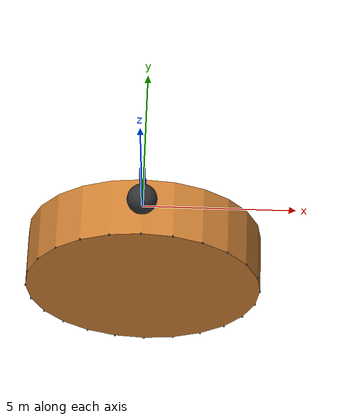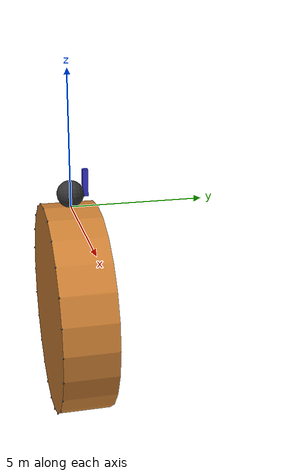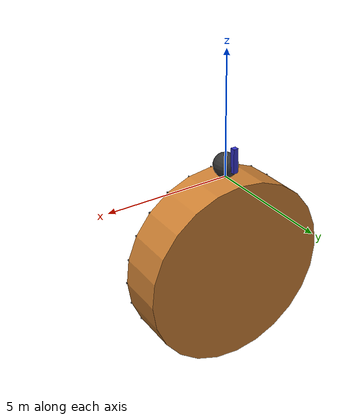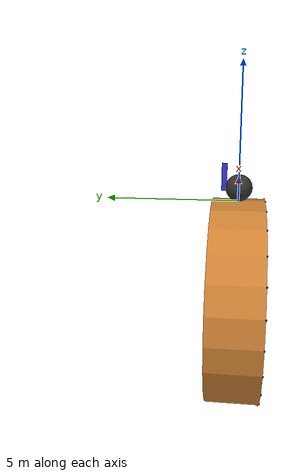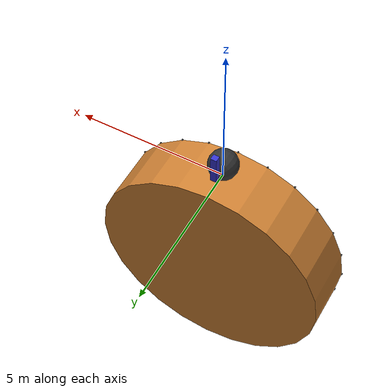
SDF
<?xml version="1.0" ?>
<sdf version="1.5">
  <world name="default">
    <plugin
      filename="gz-sim-apply-link-wrench-system"
      name="gz::sim::systems::ApplyLinkWrench">
    </plugin>

    <physics type="ode">
      <ode>
        <solver>
          <iters>100</iters>
          <sor>1.0</sor>
        </solver>
      </ode>
      <real_time_factor>0</real_time_factor>
    </physics>

    <model name="tire">
      <pose>0 0 0.5  0 0 0</pose>

      <link name="wheel">
        <pose>0 0 0  1.5707963267948966 0 0</pose>
        <inertial>
          <mass>2.5</mass>
          <inertia>
            <ixx>0.20833333333333331</ixx>
            <ixy>0</ixy>
            <ixz>0</ixz>
            <iyy>0.20833333333333331</iyy>
            <iyz>0</iyz>
            <izz>0.3125</izz>
          </inertia>
        </inertial>
        <collision name="collision">
          <geometry>
            <sphere>
              <radius>0.5</radius>
            </sphere>
          </geometry>
          <surface>
            <contact>
              <ode>
                <max_vel>1e5</max_vel>
                <min_depth>0.0</min_depth>
                <kp>250e3</kp>
                <kd>5</kd>
              </ode>
            </contact>
            <friction>
              <ode>
                <mu>1.0</mu>
                <mu2>1.0</mu2>
                <fdir1>0 0 1</fdir1>
              </ode>
            </friction>
          </surface>
        </collision>

        <visual name="visual_indicator">
          <pose>0 0 0.2 0 0 0</pose>
          <geometry>
            <box>
              <size>0.2 0.4 0.2</size>
            </box>
          </geometry>
          <material>
            <ambient>0.8 0.2 0.2 1</ambient>
            <diffuse>0.8 0.2 0.2 1</diffuse>
            <specular>0.8 0.2 0.2 1</specular>
          </material>
        </visual>

        <visual name="visual">
          <geometry>
            <sphere>
              <radius>0.5</radius>
            </sphere>
          </geometry>
          <material>
            <ambient>0.2 0.2 0.2 1</ambient>
            <diffuse>0.2 0.2 0.2 1</diffuse>
            <specular>0.2 0.2 0.2 1</specular>
          </material>
        </visual>
      </link>

      <link name="axle">
        <pose>0 0.35 0  0 0 0</pose>

        <inertial>
          <mass>0.5</mass>
          <inertia>
            <ixx>0.0029166</ixx>
            <ixy>0</ixy>
            <ixz>0</ixz>
            <iyy>0.0029166</iyy>
            <iyz>0</iyz>
            <izz>0.0025</izz>
          </inertia>
        </inertial>

        <collision name="collision">
          <geometry>
            <cylinder>
              <radius>0.1</radius>
              <length>0.2</length>
            </cylinder>
          </geometry>
        </collision>

        <visual name="visual">
          <geometry>
            <cylinder>
              <radius>0.1</radius>
              <length>0.2</length>
            </cylinder>
          </geometry>
          <material>
            <ambient>0.2 0.8 0.2 1</ambient>
            <diffuse>0.2 0.8 0.2 1</diffuse>
            <specular>0.2 0.8 0.2 1</specular>
          </material>
        </visual>
      </link>

      <link name="upright">
        <pose>0 0.55 0.4 0 0 0</pose>

        <inertial>
          <mass>1.0</mass>
          <inertia>
            <ixx>0.08667</ixx>
            <ixy>0</ixy>
            <ixz>0</ixz>
            <iyy>0.08667</iyy>
            <iyz>0</iyz>
            <izz>0.0066667</izz>
          </inertia>
        </inertial>

        <collision name="collision">
          <geometry>
            <box>
              <size>0.2 0.2 1</size>
            </box>
          </geometry>
        </collision>
        <visual name="visual">
          <geometry>
            <box>
              <size>0.2 0.2 1</size>
            </box>
          </geometry>
          <material>
            <ambient>0.2 0.2 0.8 1</ambient>
            <diffuse>0.2 0.2 0.8 1</diffuse>
            <specular>0.2 0.2 0.8 1</specular>
          </material>
        </visual>
      </link>

      <joint type="revolute" name="axle_wheel">
        <parent>axle</parent>
        <child>wheel</child>
        <axis>
          <xyz>0 0 1</xyz>
        </axis>

        <sensor name="force_torque" type="force_torque">
          <always_on>true</always_on>
          <visualize>true</visualize>
          <update_rate>1000</update_rate>
          <force_torque>
            <frame>parent</frame>
          </force_torque>
        </sensor>
      </joint>

      <joint type="revolute" name="steer">
        <parent>upright</parent>
        <child>axle</child>
        <axis>
          <xyz>0 0 1</xyz>
          <limit>
            <upper>0</upper>
            <lower>-0</lower>
          </limit>
        </axis>
      </joint>

      <joint type="prismatic" name="world_upright">
        <parent>world</parent>
        <child>upright</child>
        <axis>
          <xyz>0 0 1</xyz>
          <limit>
            <upper>0.1</upper>
            <lower>-0.1</lower>
          </limit>
        </axis>
      </joint>
      <plugin
        filename="gz-sim-wheel-slip-system"
        name="gz::sim::systems::WheelSlip">
        <wheel link_name="wheel">
          <wheel_radius>0.1</wheel_radius>
          <slip_compliance_lateral>0.01</slip_compliance_lateral>
          <slip_compliance_longitudinal>0.01</slip_compliance_longitudinal>
          <wheel_normal_force>1000</wheel_normal_force>
        </wheel>
      </plugin>
    </model>

    <model name="drum">
      <pose>0 0 -4.0  1.5707963267948966 0 0</pose>

      <link name="link">
        <inertial>
          <mass>10</mass>
          <inertia>
            <ixx>43.33333333333333</ixx>
            <ixy>0</ixy>
            <ixz>0</ixz>
            <iyy>43.33333333333333</iyy>
            <iyz>0</iyz>
            <izz>80.0</izz>
          </inertia>
        </inertial>
        <collision name="collision">
          <geometry>
            <cylinder>
              <radius>4.0</radius>
              <length>2.0</length>
            </cylinder>
          </geometry>
          <surface>
            <contact>
              <ode>
                <max_vel>1e5</max_vel>
                <min_depth>0.0</min_depth>
              </ode>
            </contact>
            <friction>
              <ode>
                <mu>1.5</mu>
                <mu2>1.5</mu2>
              </ode>
            </friction>
          </surface>
        </collision>

        <visual name="visual">
          <geometry>
            <cylinder>
              <radius>4.0</radius>
              <length>2.0</length>
            </cylinder>
          </geometry>
          <material>
            <ambient>0.8 0.5 0.2 1</ambient>
            <diffuse>0.8 0.5 0.2 1</diffuse>
            <specular>0.8 0.5 0.2 1</specular>
          </material>
        </visual>

        <visual name='block0'>
          <pose>0.0 4.0 1 0 0 0</pose>
          <geometry>
            <box>
              <size>0.05 0.05 0.05</size>
            </box>
          </geometry>
          <material>
            <ambient>0.0 0.0 0.0 1</ambient>
            <diffuse>0.0 0.0 0.0 1</diffuse>
            <specular>0.0 0.0 0.0 1</specular>
          </material>
        </visual>

        <visual name='block1'>
          <pose>1.035276180410083 3.8637033051562732 1 0 0 0</pose>
          <geometry>
            <box>
              <size>0.05 0.05 0.05</size>
            </box>
          </geometry>
          <material>
            <ambient>0.0 0.0 0.0 1</ambient>
            <diffuse>0.0 0.0 0.0 1</diffuse>
            <specular>0.0 0.0 0.0 1</specular>
          </material>
        </visual>

        <visual name='block2'>
          <pose>1.9999999999999998 3.464101615137755 1 0 0 0</pose>
          <geometry>
            <box>
              <size>0.05 0.05 0.05</size>
            </box>
          </geometry>
          <material>
            <ambient>0.0 0.0 0.0 1</ambient>
            <diffuse>0.0 0.0 0.0 1</diffuse>
            <specular>0.0 0.0 0.0 1</specular>
          </material>
        </visual>

        <visual name='block3'>
          <pose>2.82842712474619 2.8284271247461903 1 0 0 0</pose>
          <geometry>
            <box>
              <size>0.05 0.05 0.05</size>
            </box>
          </geometry>
          <material>
            <ambient>0.0 0.0 0.0 1</ambient>
            <diffuse>0.0 0.0 0.0 1</diffuse>
            <specular>0.0 0.0 0.0 1</specular>
          </material>
        </visual>

        <visual name='block4'>
          <pose>3.4641016151377544 2.0000000000000004 1 0 0 0</pose>
          <geometry>
            <box>
              <size>0.05 0.05 0.05</size>
            </box>
          </geometry>
          <material>
            <ambient>0.0 0.0 0.0 1</ambient>
            <diffuse>0.0 0.0 0.0 1</diffuse>
            <specular>0.0 0.0 0.0 1</specular>
          </material>
        </visual>

        <visual name='block5'>
          <pose>3.8637033051562732 1.035276180410083 1 0 0 0</pose>
          <geometry>
            <box>
              <size>0.05 0.05 0.05</size>
            </box>
          </geometry>
          <material>
            <ambient>0.0 0.0 0.0 1</ambient>
            <diffuse>0.0 0.0 0.0 1</diffuse>
            <specular>0.0 0.0 0.0 1</specular>
          </material>
        </visual>

        <visual name='block6'>
          <pose>4.0 2.4492935982947064e-16 1 0 0 0</pose>
          <geometry>
            <box>
              <size>0.05 0.05 0.05</size>
            </box>
          </geometry>
          <material>
            <ambient>0.0 0.0 0.0 1</ambient>
            <diffuse>0.0 0.0 0.0 1</diffuse>
            <specular>0.0 0.0 0.0 1</specular>
          </material>
        </visual>

        <visual name='block7'>
          <pose>3.8637033051562732 -1.0352761804100825 1 0 0 0</pose>
          <geometry>
            <box>
              <size>0.05 0.05 0.05</size>
            </box>
          </geometry>
          <material>
            <ambient>0.0 0.0 0.0 1</ambient>
            <diffuse>0.0 0.0 0.0 1</diffuse>
            <specular>0.0 0.0 0.0 1</specular>
          </material>
        </visual>

        <visual name='block8'>
          <pose>3.4641016151377553 -1.9999999999999991 1 0 0 0</pose>
          <geometry>
            <box>
              <size>0.05 0.05 0.05</size>
            </box>
          </geometry>
          <material>
            <ambient>0.0 0.0 0.0 1</ambient>
            <diffuse>0.0 0.0 0.0 1</diffuse>
            <specular>0.0 0.0 0.0 1</specular>
          </material>
        </visual>

        <visual name='block9'>
          <pose>2.8284271247461903 -2.82842712474619 1 0 0 0</pose>
          <geometry>
            <box>
              <size>0.05 0.05 0.05</size>
            </box>
          </geometry>
          <material>
            <ambient>0.0 0.0 0.0 1</ambient>
            <diffuse>0.0 0.0 0.0 1</diffuse>
            <specular>0.0 0.0 0.0 1</specular>
          </material>
        </visual>

        <visual name='block10'>
          <pose>1.9999999999999998 -3.464101615137755 1 0 0 0</pose>
          <geometry>
            <box>
              <size>0.05 0.05 0.05</size>
            </box>
          </geometry>
          <material>
            <ambient>0.0 0.0 0.0 1</ambient>
            <diffuse>0.0 0.0 0.0 1</diffuse>
            <specular>0.0 0.0 0.0 1</specular>
          </material>
        </visual>

        <visual name='block11'>
          <pose>1.035276180410084 -3.863703305156273 1 0 0 0</pose>
          <geometry>
            <box>
              <size>0.05 0.05 0.05</size>
            </box>
          </geometry>
          <material>
            <ambient>0.0 0.0 0.0 1</ambient>
            <diffuse>0.0 0.0 0.0 1</diffuse>
            <specular>0.0 0.0 0.0 1</specular>
          </material>
        </visual>

        <visual name='block12'>
          <pose>4.898587196589413e-16 -4.0 1 0 0 0</pose>
          <geometry>
            <box>
              <size>0.05 0.05 0.05</size>
            </box>
          </geometry>
          <material>
            <ambient>0.0 0.0 0.0 1</ambient>
            <diffuse>0.0 0.0 0.0 1</diffuse>
            <specular>0.0 0.0 0.0 1</specular>
          </material>
        </visual>

        <visual name='block13'>
          <pose>-1.0352761804100832 -3.8637033051562732 1 0 0 0</pose>
          <geometry>
            <box>
              <size>0.05 0.05 0.05</size>
            </box>
          </geometry>
          <material>
            <ambient>0.0 0.0 0.0 1</ambient>
            <diffuse>0.0 0.0 0.0 1</diffuse>
            <specular>0.0 0.0 0.0 1</specular>
          </material>
        </visual>

        <visual name='block14'>
          <pose>-1.9999999999999991 -3.4641016151377553 1 0 0 0</pose>
          <geometry>
            <box>
              <size>0.05 0.05 0.05</size>
            </box>
          </geometry>
          <material>
            <ambient>0.0 0.0 0.0 1</ambient>
            <diffuse>0.0 0.0 0.0 1</diffuse>
            <specular>0.0 0.0 0.0 1</specular>
          </material>
        </visual>

        <visual name='block15'>
          <pose>-2.8284271247461885 -2.8284271247461916 1 0 0 0</pose>
          <geometry>
            <box>
              <size>0.05 0.05 0.05</size>
            </box>
          </geometry>
          <material>
            <ambient>0.0 0.0 0.0 1</ambient>
            <diffuse>0.0 0.0 0.0 1</diffuse>
            <specular>0.0 0.0 0.0 1</specular>
          </material>
        </visual>

        <visual name='block16'>
          <pose>-3.4641016151377535 -2.0000000000000018 1 0 0 0</pose>
          <geometry>
            <box>
              <size>0.05 0.05 0.05</size>
            </box>
          </geometry>
          <material>
            <ambient>0.0 0.0 0.0 1</ambient>
            <diffuse>0.0 0.0 0.0 1</diffuse>
            <specular>0.0 0.0 0.0 1</specular>
          </material>
        </visual>

        <visual name='block17'>
          <pose>-3.8637033051562732 -1.0352761804100825 1 0 0 0</pose>
          <geometry>
            <box>
              <size>0.05 0.05 0.05</size>
            </box>
          </geometry>
          <material>
            <ambient>0.0 0.0 0.0 1</ambient>
            <diffuse>0.0 0.0 0.0 1</diffuse>
            <specular>0.0 0.0 0.0 1</specular>
          </material>
        </visual>

        <visual name='block18'>
          <pose>-4.0 -7.347880794884119e-16 1 0 0 0</pose>
          <geometry>
            <box>
              <size>0.05 0.05 0.05</size>
            </box>
          </geometry>
          <material>
            <ambient>0.0 0.0 0.0 1</ambient>
            <diffuse>0.0 0.0 0.0 1</diffuse>
            <specular>0.0 0.0 0.0 1</specular>
          </material>
        </visual>

        <visual name='block19'>
          <pose>-3.8637033051562737 1.0352761804100812 1 0 0 0</pose>
          <geometry>
            <box>
              <size>0.05 0.05 0.05</size>
            </box>
          </geometry>
          <material>
            <ambient>0.0 0.0 0.0 1</ambient>
            <diffuse>0.0 0.0 0.0 1</diffuse>
            <specular>0.0 0.0 0.0 1</specular>
          </material>
        </visual>

        <visual name='block20'>
          <pose>-3.4641016151377544 2.0 1 0 0 0</pose>
          <geometry>
            <box>
              <size>0.05 0.05 0.05</size>
            </box>
          </geometry>
          <material>
            <ambient>0.0 0.0 0.0 1</ambient>
            <diffuse>0.0 0.0 0.0 1</diffuse>
            <specular>0.0 0.0 0.0 1</specular>
          </material>
        </visual>

        <visual name='block21'>
          <pose>-2.8284271247461907 2.82842712474619 1 0 0 0</pose>
          <geometry>
            <box>
              <size>0.05 0.05 0.05</size>
            </box>
          </geometry>
          <material>
            <ambient>0.0 0.0 0.0 1</ambient>
            <diffuse>0.0 0.0 0.0 1</diffuse>
            <specular>0.0 0.0 0.0 1</specular>
          </material>
        </visual>

        <visual name='block22'>
          <pose>-2.0000000000000018 3.4641016151377535 1 0 0 0</pose>
          <geometry>
            <box>
              <size>0.05 0.05 0.05</size>
            </box>
          </geometry>
          <material>
            <ambient>0.0 0.0 0.0 1</ambient>
            <diffuse>0.0 0.0 0.0 1</diffuse>
            <specular>0.0 0.0 0.0 1</specular>
          </material>
        </visual>

        <visual name='block23'>
          <pose>-1.035276180410086 3.8637033051562724 1 0 0 0</pose>
          <geometry>
            <box>
              <size>0.05 0.05 0.05</size>
            </box>
          </geometry>
          <material>
            <ambient>0.0 0.0 0.0 1</ambient>
            <diffuse>0.0 0.0 0.0 1</diffuse>
            <specular>0.0 0.0 0.0 1</specular>
          </material>
        </visual>

      </link>

      <joint type="revolute" name="joint">
        <parent>world</parent>
        <child>link</child>
        <axis>
          <xyz>0 0 1</xyz>
        </axis>
      </joint>
    </model>

  </world>
</sdf>
